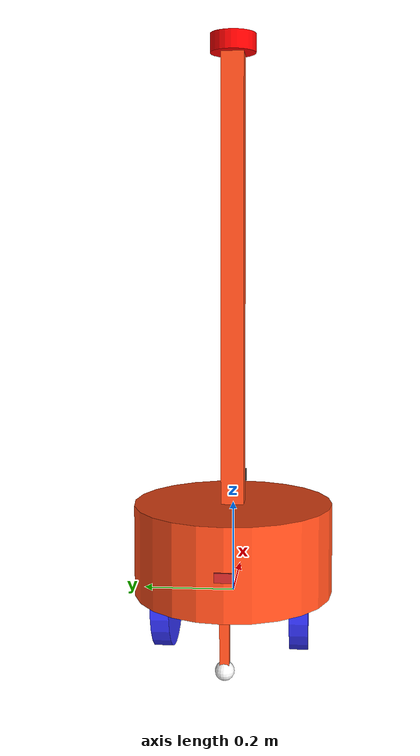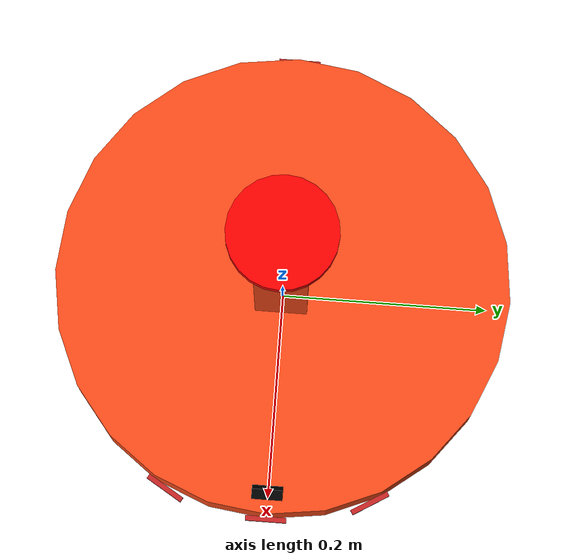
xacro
<?xml version="1.0"?>
<robot xmlns:xacro="http://www.ros.org/wiki/xacro"  name="robot">

    <xacro:arg name="use_ros2_control" default="true"/>
    <xacro:arg name="sim_mode" default="false"/>
    <xacro:include filename="robot_core.xacro" />

    <xacro:if value="$(arg use_ros2_control)">
        <xacro:include filename="ros2_control.xacro" />
    </xacro:if>
    <xacro:unless value="$(arg use_ros2_control)">
        <xacro:include filename="gazebo_control.xacro" />
    </xacro:unless>
    <xacro:include filename="lidar.xacro" />
    <xacro:include filename="ultrasonic.xacro" />
    <xacro:include filename="camera.xacro" />

</robot>

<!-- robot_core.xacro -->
<robot xmlns:xacro="http://www.ros.org/wiki/xacro" >

    <xacro:include filename="inertial_macros.xacro"/>

    <xacro:property name="chassis_length" value="0.44"/>
    <xacro:property name="chassis_height" value="0.2"/>
    <xacro:property name="chassis_mass" value="20.0"/>
    <xacro:property name="wheel_radius" value="0.125"/>
    <xacro:property name="wheel_thickness" value="0.04"/>
    <xacro:property name="wheel_mass" value="0.05"/>
    <xacro:property name="wheel_offset_x" value="0"/>
    <xacro:property name="wheel_offset_y" value="0.1485"/>
    <xacro:property name="wheel_offset_z" value="0.01"/>
    <xacro:property name="caster_wheel_radius" value="0.02"/>
    <xacro:property name="caster_wheel_mass" value="0.01"/>
    <xacro:property name="connector_size" value="0.02"/>
    <xacro:property name="connector_height" value="0.15"/>
    <xacro:property name="connector_offset_z" value="-0.02"/>
    <xacro:property name="caster_wheel_offset_x" value="0.1"/>
    <xacro:property name="caster_wheel_offset_z" value="${wheel_offset_z - wheel_radius + caster_wheel_radius + 0.0115}"/>

    <material name="white">
        <color rgba="1 1 1 1" />
    </material>

    <material name="orange">
        <color rgba="1 0.3 0.1 1"/>
    </material>

    <material name="blue">
        <color rgba="0.2 0.2 1 1"/>
    </material>

    <material name="black">
        <color rgba="0 0 0 1"/>
    </material>

    <material name="red">
        <color rgba="1 0 0 1"/>
    </material>

    <!-- BASE LINK -->

    <link name="base_link">

    </link>

    <!-- BASE_FOOTPRINT LINK -->

    <joint name="base_footprint_joint" type="fixed">
        <parent link="base_link"/>
        <child link="base_footprint"/>
        <origin xyz="0 0 0" rpy="0 0 0"/>
    </joint>

    <link name="base_footprint">
    </link>

    <!-- CHASSIS LINK -->

    <joint name="chassis_joint" type="fixed">
        <parent link="base_link"/>
        <child link="chassis"/>
        <origin xyz="0 0 0"/>
    </joint>

    <link name="chassis">
        <visual>
            <origin xyz="0 0 ${chassis_height/2}"/>
            <geometry>
                <cylinder radius="${chassis_length/2}" length="${chassis_height}"/>
            </geometry>
            <material name="orange"/>
        </visual>
        <collision>
            <origin xyz="0 0 ${chassis_height/2}"/>
            <geometry>
                <cylinder radius="${chassis_length/2}" length="${chassis_height}"/>
            </geometry>
        </collision>
         <xacro:inertial_cylinder mass="0.5" length="${chassis_height}" radius="${chassis_length/2}">
            <origin xyz="0 0 ${chassis_height/2}" rpy="0 0 0"/>
        </xacro:inertial_cylinder>
    </link>

    <gazebo reference="chassis">
        <material>Gazebo/Orange</material>
    </gazebo>

    <!-- LEFT WHEEL LINK -->

    <joint name="left_wheel_joint" type="continuous">
        <parent link="base_link"/>
        <child link="left_wheel"/>
        <origin xyz="0 ${wheel_offset_y} 0" rpy="-${pi/2} 0 0" />
        <axis xyz="0 0 1"/>
    </joint>

    <link name="left_wheel">
        <visual>
            <geometry>
                <cylinder radius="${wheel_radius}" length="${wheel_thickness}"/>
            </geometry>
            <material name="blue"/>
        </visual>
        <collision>
            <geometry>
                <sphere radius="${wheel_radius}"/>
            </geometry>
        </collision>
        <xacro:inertial_cylinder mass="${wheel_mass}" length="${wheel_thickness}" radius="${wheel_radius}">
            <origin xyz="0 0 0" rpy="0 0 0"/>
        </xacro:inertial_cylinder>
    </link>

    <gazebo reference="left_wheel">
        <material>Gazebo/Blue</material>
    </gazebo>

    <!-- RIGHT WHEEL LINK -->

    <joint name="right_wheel_joint" type="continuous">
        <parent link="base_link"/>
        <child link="right_wheel"/>
        <origin xyz="0 ${-wheel_offset_y} 0" rpy="${pi/2} 0 0" />
        <axis xyz="0 0 -1"/>
    </joint>

    <link name="right_wheel">
        <visual>
            <geometry>
                <cylinder radius="${wheel_radius}" length="${wheel_thickness}"/>
            </geometry>
            <material name="blue"/>
        </visual>
        <collision>
            <geometry>
                <sphere radius="${wheel_radius}"/>
            </geometry>
        </collision>
        <xacro:inertial_cylinder mass="${wheel_mass}" length="${wheel_thickness}" radius="${wheel_radius}">
            <origin xyz="0 0 0" rpy="0 0 0"/>
        </xacro:inertial_cylinder>
    </link>

    <gazebo reference="right_wheel">
        <material>Gazebo/Blue</material>
    </gazebo>

    <!-- CASTER FRONT WHEEL LINK -->

    <joint name="front_connector_joint" type="fixed">
        <parent link="chassis"/>
        <child link="front_connector"/>
        <origin xyz="${caster_wheel_offset_x} 0 ${connector_offset_z}" rpy="0 0 0" />
    </joint>

    <link name="front_connector">
        <visual>
            <origin xyz="${caster_wheel_offset_x} 0 0"/>
            <geometry>
                <box size="${connector_size} ${connector_size} ${connector_height}"/>
            </geometry>
            <material name="orange"/>
        </visual>
        <collision>
            <origin xyz="${caster_wheel_offset_x} 0 0"/>
            <geometry>
                <box size="${connector_size} ${connector_size} ${connector_height}"/>
            </geometry>
        </collision>
        <xacro:inertial_box mass="0.1" x="${connector_size}" y="${connector_size}" z="${connector_height}">
            <origin xyz="${caster_wheel_offset_x} 0 0" rpy="0 0 0"/>
        </xacro:inertial_box>
    </link>

    <gazebo reference="front_connector">
        <material>Gazebo/Orange</material>
    </gazebo>

    <joint name="caster_front_wheel_joint" type="fixed">
        <parent link="front_connector"/>
        <child link="caster_front_wheel"/>
        <origin xyz="${caster_wheel_offset_x} 0 ${caster_wheel_offset_z}"/>
    </joint>

    <link name="caster_front_wheel">
        <visual>
            <geometry>
                <sphere radius="${caster_wheel_radius}"/>
            </geometry>
            <material name="white"/>
        </visual>
        <collision>
            <geometry>
                <sphere radius="${caster_wheel_radius}"/>
            </geometry>
        </collision>
        <xacro:inertial_sphere mass="${caster_wheel_mass}" radius="${caster_wheel_radius}">
            <origin xyz="0 0 0" rpy="0 0 0"/>
        </xacro:inertial_sphere>
    </link>

    <gazebo reference="caster_front_wheel">
        <material>Gazebo/White</material>
        <mu1 value="0.001"/>
        <mu2 value="0.001"/>
    </gazebo>

    <!-- CASTER BACK WHEEL LINK -->

    <joint name="back_connector_joint" type="fixed">
        <parent link="chassis"/>
        <child link="back_connector"/>
        <origin xyz="${-caster_wheel_offset_x} 0 ${connector_offset_z}" rpy="0 0 0" />
    </joint>

    <link name="back_connector">
        <visual>
            <origin xyz="${-caster_wheel_offset_x} 0 0"/>
            <geometry>
                <box size="${connector_size} ${connector_size} ${connector_height}"/>
            </geometry>
            <material name="orange"/>
        </visual>
        <collision>
            <origin xyz="${-caster_wheel_offset_x} 0 0"/>
            <geometry>
                <box size="${connector_size} ${connector_size} ${connector_height}"/>
            </geometry>
        </collision>
        <xacro:inertial_box mass="0.1" x="${connector_size}" y="${connector_size}" z="${connector_height}">
            <origin xyz="${-caster_wheel_offset_x} 0 0" rpy="0 0 0"/>
        </xacro:inertial_box>
    </link>

    <gazebo reference="back_connector">
        <material>Gazebo/Orange</material>
    </gazebo>

    <joint name="caster_back_wheel_joint" type="fixed">
        <parent link="back_connector"/>
        <child link="caster_back_wheel"/>
        <origin xyz="${-caster_wheel_offset_x} 0 ${caster_wheel_offset_z}"/>
    </joint>

    <link name="caster_back_wheel">
        <visual>
            <geometry>
                <sphere radius="${caster_wheel_radius}"/>
            </geometry>
            <material name="white"/>
        </visual>
        <collision>
            <geometry>
                <sphere radius="${caster_wheel_radius}"/>
            </geometry>
        </collision>
        <xacro:inertial_sphere mass="${caster_wheel_mass}" radius="${caster_wheel_radius}">
            <origin xyz="0 0 0" rpy="0 0 0"/>
        </xacro:inertial_sphere>
    </link>

    <gazebo reference="caster_back_wheel">
        <material>Gazebo/White</material>
        <mu1 value="0.001"/>
        <mu2 value="0.001"/>
    </gazebo>
</robot>

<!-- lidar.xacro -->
<robot xmlns:xacro="http://www.ros.org/wiki/xacro" >

    <joint name="lidar_connector_joint" type="fixed">
        <parent link="chassis"/>
        <child link="lidar_connector"/>
        <origin xyz="0 0 0.7" rpy="0 0 0" />
    </joint>

    <link name="lidar_connector">
        <visual>
            <origin xyz="0 0 0"/>
            <geometry>
                <box size="0.05 0.05 1.0"/>
            </geometry>
            <material name="orange"/>
        </visual>
        <collision>
            <origin xyz="0 0 0"/>
            <geometry>
                <box size="0.05 0.05 1.0"/>
            </geometry>
        </collision>
        <xacro:inertial_box mass="0.001" x="0.05" y="0.05" z="1.0">
            <origin xyz="0 0 0" rpy="0 0 0"/>
        </xacro:inertial_box>
    </link>

    <gazebo reference="lidar_connector">
        <material>Gazebo/Orange</material>
    </gazebo>

    <joint name="laser_joint" type="fixed">
        <parent link="lidar_connector"/>
        <child link="laser_frame"/>
        <origin xyz="0 0 0.5" rpy="0 0 0"/>
    </joint>

    <link name="laser_frame">
        <visual>
            <geometry>
                <cylinder radius="0.05" length="0.04"/>
            </geometry>
            <material name="red"/>
        </visual>
        <collision>
            <geometry>
                <cylinder radius="0.05" length="0.04"/>
            </geometry>
        </collision>
        <xacro:inertial_cylinder mass="0.1" length="0.04" radius="0.05">
            <origin xyz="0 0 0" rpy="0 0 0"/>
        </xacro:inertial_cylinder>
    </link>

    <gazebo reference="laser_frame">
        <material>Gazebo/Red</material>

        <sensor name="laser" type="ray">
            <pose> 0 0 0 0 0 0 </pose>
            <update_rate>10</update_rate>
            <ray>
                <scan>
                    <horizontal>
                        <samples>360</samples>
                        <min_angle>-3.14</min_angle>
                        <max_angle>3.14</max_angle>
                    </horizontal>
                </scan>
                <range>
                    <min>0.3</min>
                    <max>12</max>
                </range>
            </ray>
            <plugin name="laser_controller" filename="libgazebo_ros_ray_sensor.so">
                <ros>
                    <remapping>~/out:=scan</remapping>
                </ros>
                <output_type>sensor_msgs/LaserScan</output_type>
                <frame_name>laser_frame</frame_name>
            </plugin>
        </sensor>
    </gazebo>

</robot>

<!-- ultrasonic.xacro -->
<robot xmlns:xacro="http://www.ros.org/wiki/xacro">
    <xacro:property name="us_offset_x" value="${chassis_length/2 + 0.003}"/>
    <xacro:property name="us_offset_y" value="0.1"/>
    <xacro:property name="us_offset_z" value="${chassis_height/2}"/>
    <xacro:property name="us_rotation_yaw" value="0.55"/> <!-- 3.14rad = 180 degrees, 0.1rad = 5.7degrees -->

    <joint name="fr_mid_us_joint" type="fixed">
        <parent link="chassis"/>
        <child link="fr_mid_us_frame"/>
        <origin xyz="${us_offset_x} 0 ${us_offset_z}" rpy="0 0 0"/>
    </joint>

    <link name="fr_mid_us_frame">
        <visual>
            <geometry>
                <box size="0.005 0.04 0.02"/>
            </geometry>
            <origin xyz="0 0 -0.0025" rpy="0 0 0"/>
        </visual>
        <collision>
            <geometry>
                <box size="0.005 0.04 0.02"/>
            </geometry>
            <origin xyz="0 0 -0.0025" rpy="0 0 0"/>
        </collision>

        <xacro:inertial_cylinder mass="0.1" length="0.02" radius="0.01">
            <origin xyz="0 0 0" rpy="0 0 0"/>
        </xacro:inertial_cylinder>
    </link>

    <gazebo reference="fr_mid_us_frame">
        <material>Gazebo/Red</material>
        <sensor type="ray" name="fr_mid_range_sensor">
            <visualize>true</visualize>
            <pose> 0 0 0 0 0 0 </pose>
            <ray>
                <scan>
                    <horizontal>
                        <samples>10</samples>
                        <resolution>1</resolution>
                        <min_angle>-0.087</min_angle>
                        <max_angle>0.087</max_angle>
                    </horizontal>
                </scan>
                <range>
                    <min>0.2</min>
                    <max>5.0</max>
                    <resolution>0.01</resolution>

                </range>
                <noise>
                    <type>gaussian</type>
                    <mean>0.0</mean>
                    <stddev>0.01</stddev>
                </noise>
            </ray>
            <update_rate>30</update_rate>
            <plugin name="fr_mid_us_controller" filename="libgazebo_ros_ray_sensor.so">
                <ros>
                    <remapping>~/out:=fr_mid_range</remapping>
                </ros>
                <output_type>sensor_msgs/Range</output_type>
                <frame_name>fr_mid_us_frame</frame_name>
            </plugin>
        </sensor>
    </gazebo>

    <joint name="fr_left_us_joint" type="fixed">
        <parent link="chassis"/>
        <child link="fr_left_us_frame"/>
        <origin xyz="${us_offset_x - 0.023} ${us_offset_y} ${us_offset_z}" rpy="0 0 ${us_rotation_yaw}"/>
    </joint>

    <link name="fr_left_us_frame">
        <visual>
            <geometry>
                <box size="0.005 0.04 0.02"/>
            </geometry>
            <origin xyz="0 0 -0.0025" rpy="0 0 0"/>
        </visual>
        <collision>
            <geometry>
                <box size="0.005 0.04 0.02"/>
            </geometry>
            <origin xyz="0 0 -0.0025" rpy="0 0 0"/>
        </collision>

        <xacro:inertial_cylinder mass="0.1" length="0.02" radius="0.01">
            <origin xyz="0 0 0" rpy="0 0 0"/>
        </xacro:inertial_cylinder>
    </link>

    <gazebo reference="fr_left_us_frame">
        <material>Gazebo/Red</material>
        <sensor type="ray" name="fr_left_range_sensor">
            <visualize>true</visualize>
            <pose> 0 0 0 0 0 0 </pose>
            <ray>
                <scan>
                    <horizontal>
                        <samples>10</samples>
                        <resolution>1</resolution>
                        <min_angle>-0.087</min_angle>
                        <max_angle>0.087</max_angle>
                    </horizontal>

                </scan>
                <range>
                    <min>0.2</min>
                    <max>5.0</max>
                    <resolution>0.01</resolution>

                </range>
                <noise>
                    <type>gaussian</type>
                    <mean>0.0</mean>
                    <stddev>0.01</stddev>
                </noise>
            </ray>
            <update_rate>30</update_rate>
            <plugin name="fr_left_us_controller" filename="libgazebo_ros_ray_sensor.so">
                <ros>
                    <remapping>~/out:=fr_left_range</remapping>
                </ros>
                <output_type>sensor_msgs/Range</output_type>
                <frame_name>fr_left_us_frame</frame_name>
            </plugin>
        </sensor>
    </gazebo>

    <joint name="fr_right_us_joint" type="fixed">
        <parent link="chassis"/>
        <child link="fr_right_us_frame"/>
        <origin xyz="${us_offset_x - 0.023} ${-us_offset_y} ${us_offset_z}" rpy="0 0 ${-us_rotation_yaw}"/>
    </joint>

    <link name="fr_right_us_frame">
        <visual>
            <geometry>
                <box size="0.005 0.04 0.02"/>
            </geometry>
            <origin xyz="0 0 -0.0025" rpy="0 0 0"/>
        </visual>
        <collision>
            <geometry>
                <box size="0.005 0.04 0.02"/>
            </geometry>
            <origin xyz="0 0 -0.0025" rpy="0 0 0"/>
        </collision>

        <xacro:inertial_cylinder mass="0.1" length="0.02" radius="0.01">
            <origin xyz="0 0 0" rpy="0 0 0"/>
        </xacro:inertial_cylinder>
    </link>

    <gazebo reference="fr_right_us_frame">
        <material>Gazebo/Red</material>
        <sensor type="ray" name="fr_right_range_sensor">
            <visualize>true</visualize>
            <pose> 0 0 0 0 0 0 </pose>
            <ray>
                <scan>
                    <horizontal>
                        <samples>10</samples>
                        <resolution>1</resolution>
                        <min_angle>-0.087</min_angle>
                        <max_angle>0.087</max_angle>
                    </horizontal>

                </scan>
                <range>
                    <min>0.2</min>
                    <max>5.0</max>
                    <resolution>0.01</resolution>

                </range>
                <noise>
                    <type>gaussian</type>
                    <mean>0.0</mean>
                    <stddev>0.01</stddev>
                </noise>
            </ray>
            <update_rate>30</update_rate>
            <plugin name="fr_right_us_controller" filename="libgazebo_ros_ray_sensor.so">
                <ros>
                    <remapping>~/out:=fr_right_range</remapping>
                </ros>
                <output_type>sensor_msgs/Range</output_type>
                <frame_name>fr_right_us_frame</frame_name>
            </plugin>
        </sensor>
    </gazebo>

    <joint name="bc_mid_us_joint" type="fixed">
        <parent link="chassis"/>
        <child link="bc_mid_us_frame"/>
        <origin xyz="${-us_offset_x} 0 ${us_offset_z}" rpy="0 0 3.14"/>
    </joint>

    <link name="bc_mid_us_frame">
        <visual>
            <geometry>
                <box size="0.005 0.04 0.02"/>
            </geometry>
            <origin xyz="0 0 -0.0025" rpy="0 0 3.14"/>
        </visual>
        <collision>
            <geometry>
                <box size="0.005 0.04 0.02"/>
            </geometry>
            <origin xyz="0 0 -0.0025" rpy="0 0 3.14"/>
        </collision>

        <xacro:inertial_cylinder mass="0.1" length="0.02" radius="0.01">
            <origin xyz="0 0 0" rpy="0 0 3.14"/>
        </xacro:inertial_cylinder>
    </link>

    <gazebo reference="bc_mid_us_frame">
        <material>Gazebo/Red</material>
        <sensor type="ray" name="bc_mid_range_sensor">
            <visualize>true</visualize>
            <pose> 0 0 0 0 0 0 </pose>
            <ray>
                <scan>
                    <horizontal>
                        <samples>10</samples>
                        <resolution>1</resolution>
                        <min_angle>-0.087</min_angle>
                        <max_angle>0.087</max_angle>
                    </horizontal>

                </scan>
                <range>
                    <min>0.2</min>
                    <max>5.0</max>
                    <resolution>0.01</resolution>

                </range>
                <noise>
                    <type>gaussian</type>
                    <mean>0.0</mean>
                    <stddev>0.01</stddev>
                </noise>
            </ray>
            <update_rate>30</update_rate>
            <plugin name="bc_mid_us_controller" filename="libgazebo_ros_ray_sensor.so">
                <ros>
                    <remapping>~/out:=bc_mid_range</remapping>
                </ros>
                <output_type>sensor_msgs/Range</output_type>
                <frame_name>bc_mid_us_frame</frame_name>
            </plugin>
        </sensor>
    </gazebo>
</robot>

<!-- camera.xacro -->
<robot xmlns:xacro="http://www.ros.org/wiki/xacro" >

    <joint name="camera_joint" type="fixed">
        <parent link="chassis"/>
        <child link="camera_link"/>
        <origin xyz="0.2 0 0.22" rpy="0 0.15 0"/>

    </joint>

    <link name="camera_link">
        <visual>
            <geometry>
                <box size="0.010 0.03 0.03"/>
            </geometry>
            <material name="black"/>
        </visual>
        <visual>
            <origin xyz="0 0 -0.05"/>
            <geometry>
                <cylinder radius="0.002" length="0.1"/>
            </geometry>
            <material name="black"/>
        </visual>
    </link>

    <joint name="camera_optical_joint" type="fixed">
        <parent link="camera_link"/>
        <child link="camera_link_optical"/>
        <origin xyz="0 0 0" rpy="${-pi/2} 0 ${-pi/2}"/>
    </joint>

    <link name="camera_link_optical"></link>

    <gazebo reference="camera_link">
        <material>Gazebo/Black</material>

        <sensor name="camera" type="camera">
            <pose> 0 0 0 0 0 0 </pose>
            <visualize>true</visualize>
            <update_rate>10</update_rate>
            <camera>
                <horizontal_fov>1.089</horizontal_fov>
                <image>
                    <format>R8G8B8</format>
                    <width>640</width>
                    <height>480</height>
                </image>
                <clip>
                    <near>0.05</near>
                    <far>8.0</far>
                </clip>
            </camera>
            <plugin name="camera_controller" filename="libgazebo_ros_camera.so">
                <frame_name>camera_link_optical</frame_name>
            </plugin>
        </sensor>
    </gazebo>

</robot>
